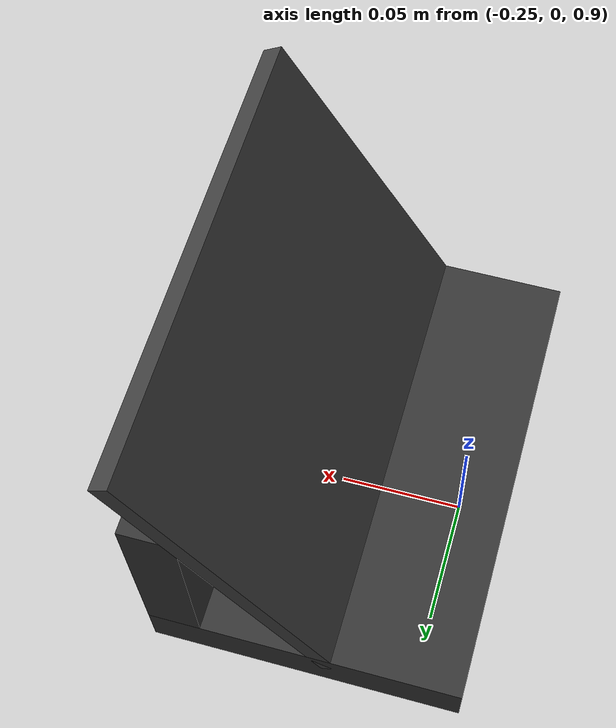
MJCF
<?xml version='1.0' encoding='utf-8'?>
<mujoco model="ipad_stand">
  <worldbody>
    <!-- Stand placed at table center (table top z = 0.92) -->
    <body name="ipad_stand" pos="-0.21 0 0.92">
      <geom name="stand_base" type="box" size="0.09 0.06 0.01" pos="0 0 0.01" quat="0.7071068 0 0 0.7071068" rgba="0.2 0.2 0.2 1" friction="2 0.01 0.001" group="1"/>
      <!-- Ramp tilts toward -x (toward robot) -->
      <geom name="stand_ramp" type="box" size="0.07 0.09 0.004" pos="0.025 0 0.0733" quat="0.8660254 0 -0.5 0" rgba="0.25 0.25 0.25 1" friction="2 0.01 0.001" group="1"/>
      <!-- Front lip to prevent sliding -->
      <!-- Back support -->
      <geom name="stand_back" type="box" size="0.09 0.01 0.04" pos="0.05 0 0.06" quat="0.7071068 0 0 0.7071068" rgba="0.2 0.2 0.2 1" friction="2 0.01 0.001" group="1"/>
    </body>
  </worldbody>
</mujoco>
